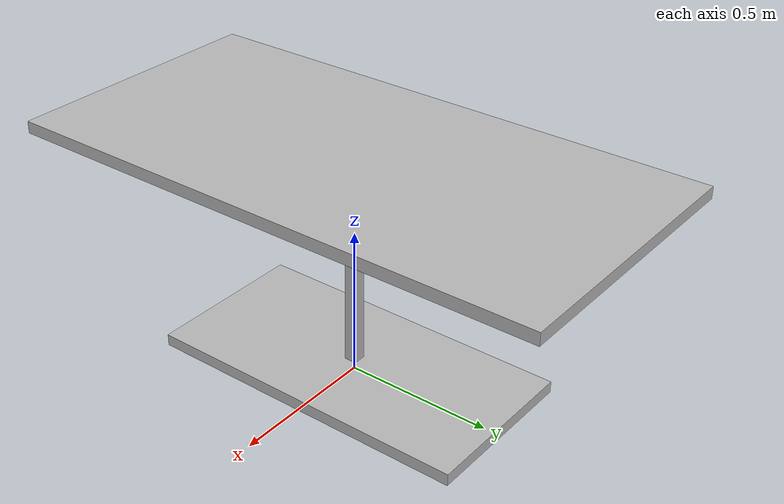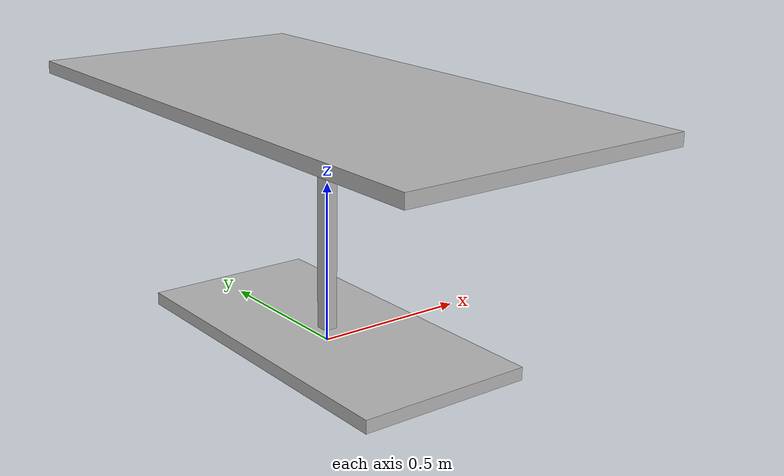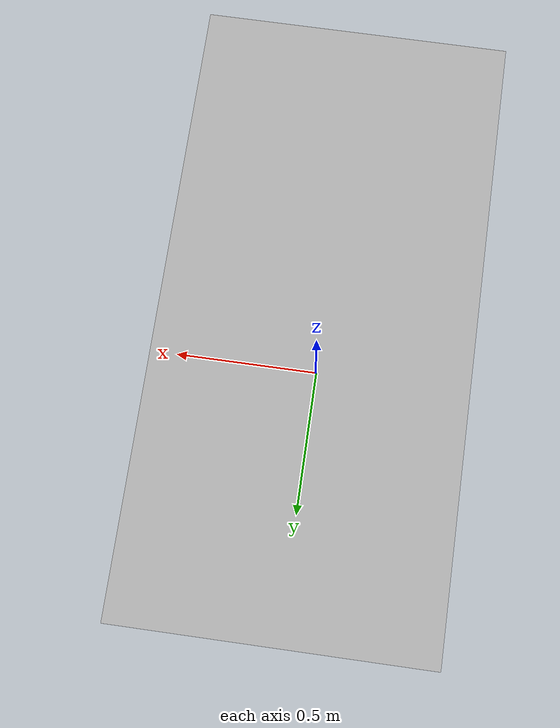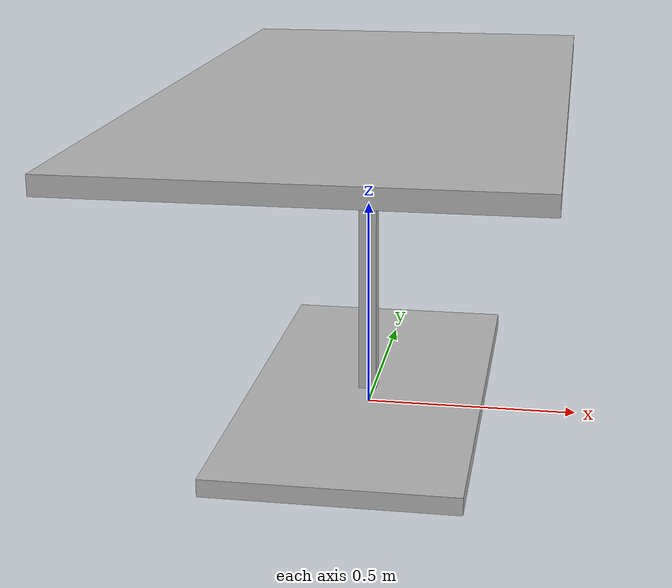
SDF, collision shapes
<?xml version="1.0" ?>
<sdf version="1.5">
  <model name="cafe_table">
    <static>true</static>
    <link name="link">
      <collision name="surface">
        <pose>0 0 0.755 0 0 0</pose>
        <geometry>
          <box>
            <size>0.913 1.826 0.04</size>
          </box>
        </geometry>
      </collision>

      <collision name="column">
        <pose>0 0 0.37 0 0 0</pose>
        <geometry>
          <box>
            <size>0.042 0.042 0.74</size>
          </box>
        </geometry>
      </collision>

      <collision name="base">
        <pose>0 0 0.02 0 0 0</pose>
        <geometry>
          <box>
            <size>0.56 1.12 0.04</size>
          </box>
        </geometry>
      </collision>

      <visual name="visual">
        <geometry>
          <mesh>
            <uri>model://cafe_table/meshes/cafe_table.dae</uri>
            <scale>1 2 1</scale>
          </mesh>
        </geometry>
      </visual>
    </link>
  </model>
</sdf>
